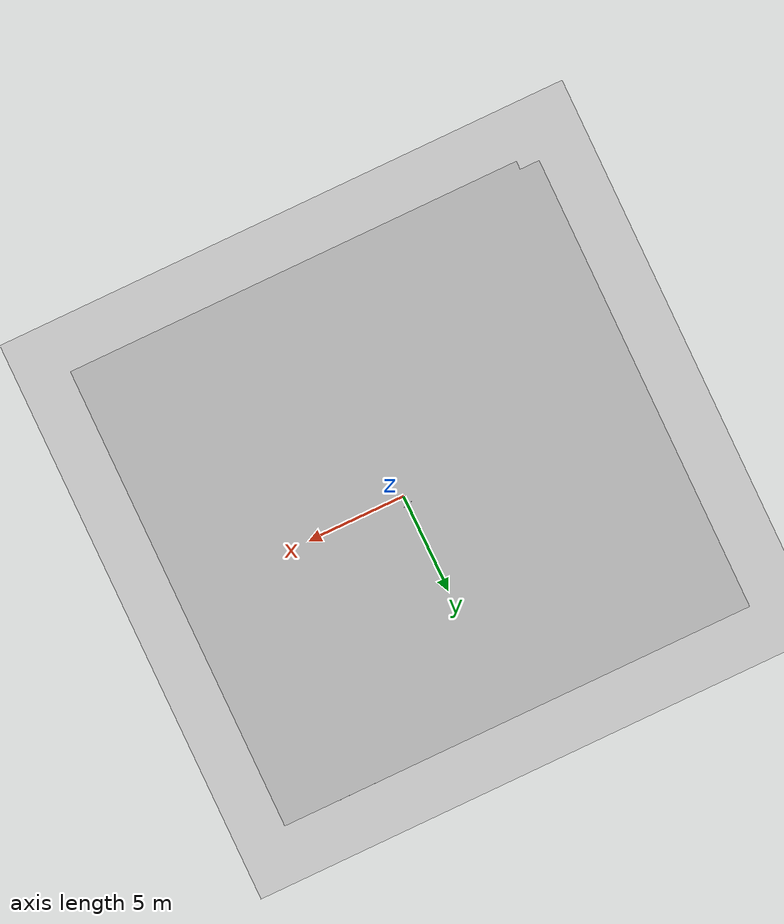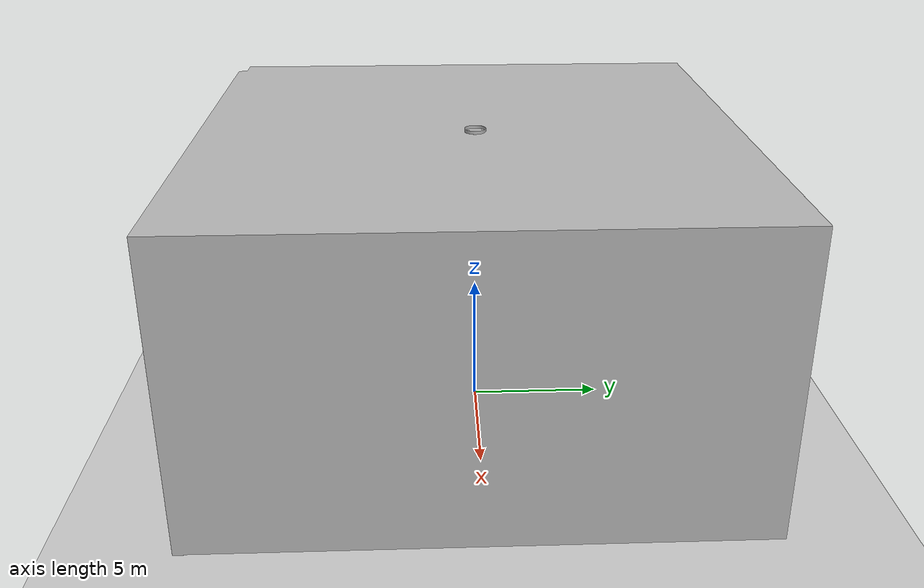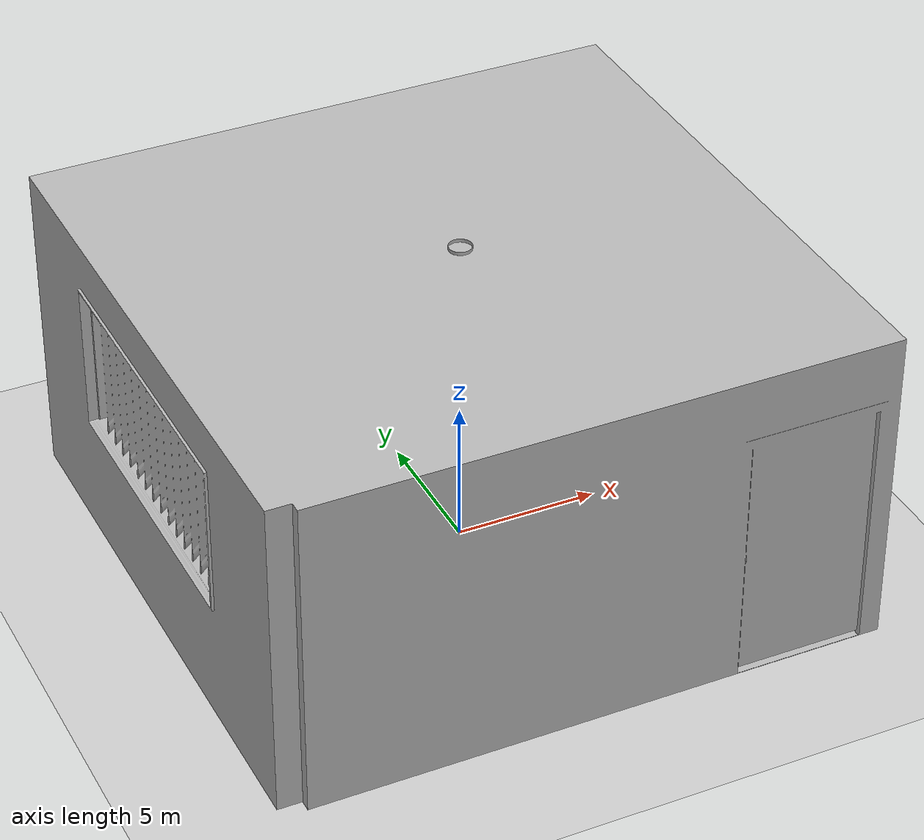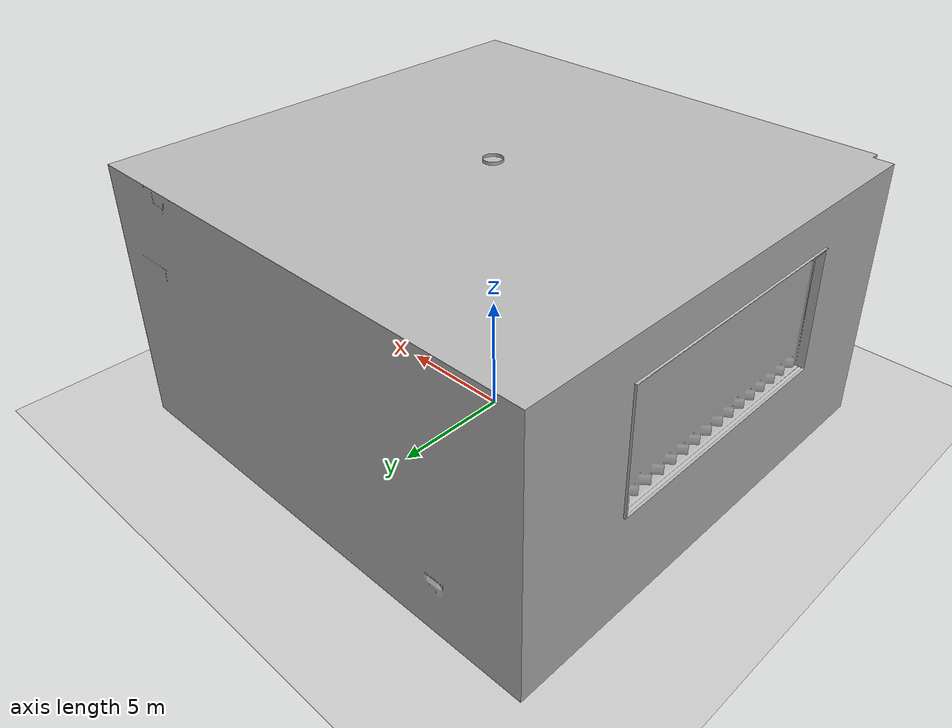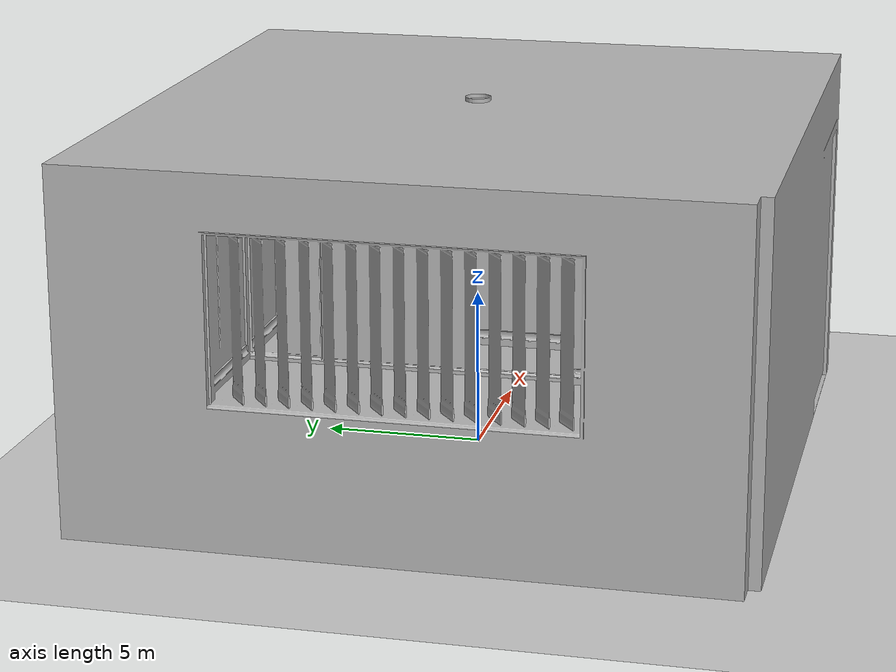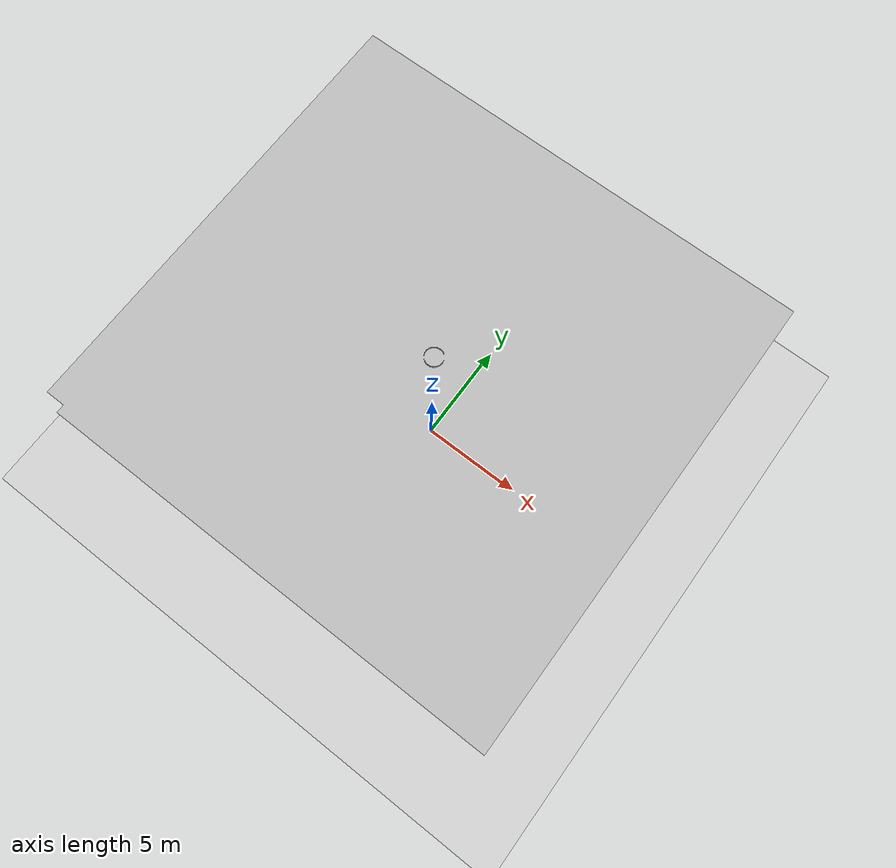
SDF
<?xml version="1.0"?>
<sdf version="1.9">
  <world name="igv_test_world">

    <light type="directional" name="sun">
      <pose>0 0 10 0 0 0</pose>
      <diffuse>1 1 1 1</diffuse>
      <specular>0.2 0.2 0.2 1</specular>
      <direction>-0.5 0.5 -1</direction>
    </light>

    <model name="ground_plane">
      <static>true</static>
      <link name="link">
        <collision name="collision">
          <geometry>
            <plane>
              <normal>0 0 1</normal>
              <size>100 100</size>
            </plane>
          </geometry>
        </collision>
        <visual name="visual">
          <geometry>
            <plane>
              <normal>0 0 1</normal>
              <size>100 100</size>
            </plane>
          </geometry>
        </visual>
      </link>
    </model>

    <plugin filename="gz-sim-physics-system"
        name="gz::sim::systems::Physics"/>

    <plugin filename="gz-sim-sensors-system" name="gz::sim::systems::Sensors">
       <render_engine>ogre2</render_engine>
    </plugin>

    <plugin filename="gz-sim-scene-broadcaster-system"
        name="gz::sim::systems::SceneBroadcaster"/>

    <plugin filename="gz-sim-user-commands-system"
        name="gz::sim::systems::UserCommands"/>

    <include>
      <uri>model://test_room</uri>
    </include>

  </world>
</sdf>

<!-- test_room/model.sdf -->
<sdf version="1.9">
  <model name="test_room">
    <static>true</static>

    <link name="link">

      <inertial>
        <mass>1.0</mass>
        <inertia>
          <ixx>1</ixx><iyy>1</iyy><izz>1</izz>
          <ixy>0</ixy><ixz>0</ixz><iyz>0</iyz>
        </inertia>
      </inertial>

      <visual name="visual">
        <geometry>
          <mesh>
            <uri>model://test_room/meshes/empty_room.stl</uri>
            <scale>1 1 1</scale>
          </mesh>
        </geometry>
      </visual>

      <collision name="collision">
        <geometry>
          <mesh>
            <uri>model://test_room/meshes/empty_room.stl</uri>
            <scale>1 1 1</scale>
          </mesh>
        </geometry>
      </collision>

    </link>
  </model>
</sdf>
